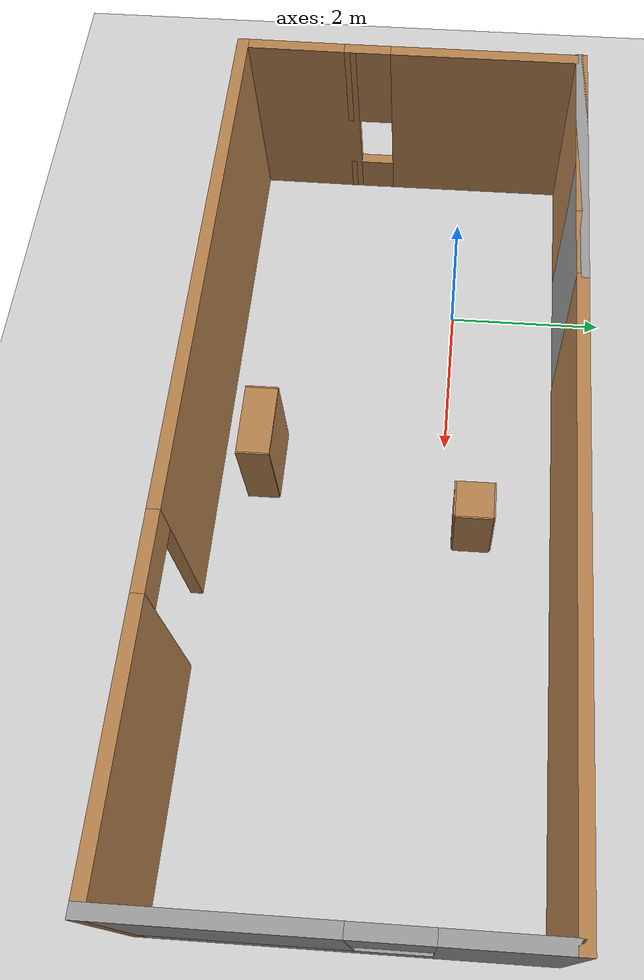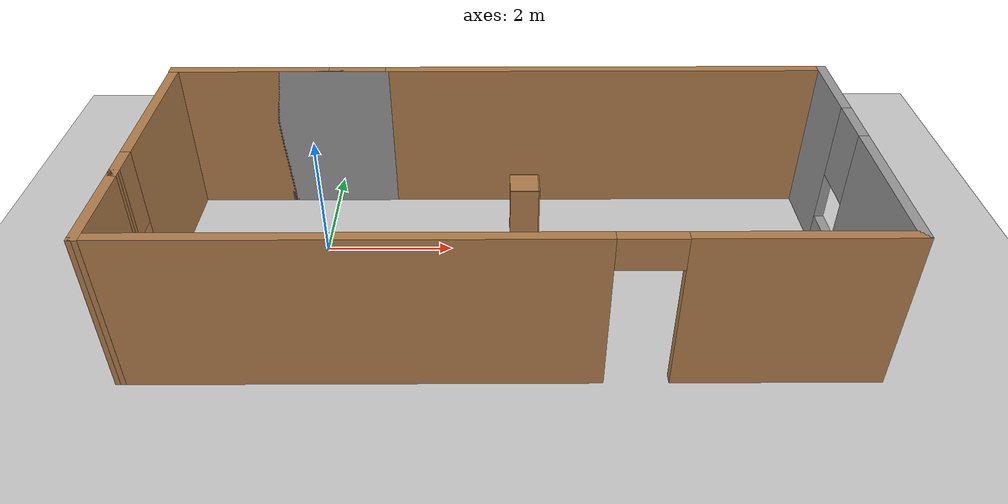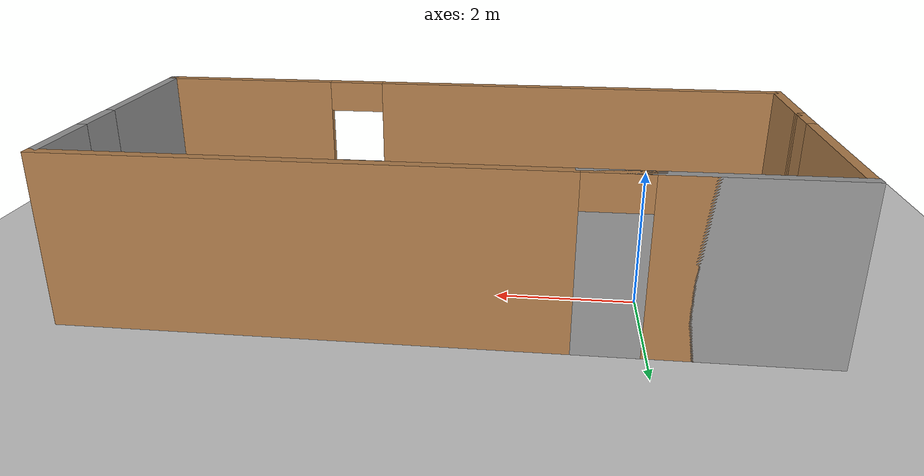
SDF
<sdf version="1.7">
 <world name="default">
  <light name="sun" type="directional">
   <pose>0 0 10 0 -0 0</pose>
   <diffuse>0.8 0.8 0.8 1</diffuse>
   <specular>0.2 0.2 0.2 1</specular>
   <attenuation>
    <range>1000</range>
    <constant>0.9</constant>
    <linear>0.01</linear>
    <quadratic>0.001</quadratic>
   </attenuation>
   <direction>-0.5 0.1 -0.9</direction>
   <spot><inner_angle>0</inner_angle><outer_angle>0</outer_angle><falloff>0</falloff></spot>
  </light>
  <model name="ground_plane">
   <static>1</static>
   <link name="link">
    <collision name="collision">
     <geometry><plane><normal>0 0 1</normal><size>100 100</size></plane></geometry>
     <surface><friction><ode><mu>100</mu><mu2>50</mu2></ode></friction></surface>
    </collision>
    <visual name="visual">
     <cast_shadows>0</cast_shadows>
     <geometry><plane><normal>0 0 1</normal><size>100 100</size></plane></geometry>
     <material>
      <script><uri>file://media/materials/scripts/gazebo.material</uri><name>Gazebo/Grey</name></script>
     </material>
    </visual>
   </link>
  </model>
  <gravity>0 0 -9.8</gravity>
  <magnetic_field>6e-06 2.3e-05 -4.2e-05</magnetic_field>
  <atmosphere type="adiabatic"/>
  <physics type="ode">
   <max_step_size>0.001</max_step_size>
   <real_time_factor>1</real_time_factor>
   <real_time_update_rate>1000</real_time_update_rate>
  </physics>
  <scene><ambient>0.4 0.4 0.4 1</ambient><background>0.7 0.7 0.7 1</background><shadows>1</shadows></scene>
  <audio><device>default</device></audio>
  <spherical_coordinates>
   <surface_model>EARTH_WGS84</surface_model>
   <latitude_deg>0</latitude_deg>
   <longitude_deg>0</longitude_deg>
   <elevation>0</elevation>
   <heading_deg>0</heading_deg>
  </spherical_coordinates>
  <model name="my">
   <pose>2.77631 -0.725136 0 0 -0 0</pose>
   <link name="Wall_0">
    <pose>-5.16473 0.640269 0 0 -0 -1.5708</pose>
    <visual name="Wall_0_Visual_0">
     <pose>-0.2975 0 1.25 0 -0 0</pose>
     <geometry><box><size>2.405 0.15 2.5</size></box></geometry>
     <material>
      <script><uri>file://media/materials/scripts/gazebo.material</uri><name>Gazebo/Wood</name></script>
      <ambient>1 1 1 1</ambient>
     </material>
     <meta><layer>0</layer></meta>
    </visual>
    <collision name="Wall_0_Collision_0">
     <geometry><box><size>2.405 0.15 2.5</size></box></geometry>
     <pose>-0.2975 0 1.25 0 -0 0</pose>
    </collision>
    <visual name="Wall_0_Visual_1">
     <pose>1.2025 0 0.25 0 -0 0</pose>
     <geometry><box><size>0.595 0.15 0.5</size></box></geometry>
     <material>
      <script><uri>file://media/materials/scripts/gazebo.material</uri><name>Gazebo/Wood</name></script>
      <ambient>1 1 1 1</ambient>
     </material>
     <meta><layer>0</layer></meta>
    </visual>
    <collision name="Wall_0_Collision_1">
     <geometry><box><size>0.595 0.15 0.5</size></box></geometry>
     <pose>1.2025 0 0.25 0 -0 0</pose>
    </collision>
    <visual name="Wall_0_Visual_2">
     <pose>1.2025 0 1.9 0 -0 0</pose>
     <geometry><box><size>0.595 0.15 1.2</size></box></geometry>
     <material>
      <script><uri>file://media/materials/scripts/gazebo.material</uri><name>Gazebo/Wood</name></script>
      <ambient>1 1 1 1</ambient>
     </material>
     <meta><layer>0</layer></meta>
    </visual>
    <collision name="Wall_0_Collision_2">
     <geometry><box><size>0.595 0.15 1.2</size></box></geometry>
     <pose>1.2025 0 1.9 0 -0 0</pose>
    </collision>
   </link>
   <link name="Wall_2">
    <collision name="Wall_2_Collision">
     <geometry><box><size>3.5 0.15 2.5</size></box></geometry>
     <pose>0 0 1.25 0 -0 0</pose>
    </collision>
    <visual name="Wall_2_Visual">
     <pose>0 0 1.25 0 -0 0</pose>
     <geometry><box><size>3.5 0.15 2.5</size></box></geometry>
     <material>
      <script><uri>file://media/materials/scripts/gazebo.material</uri><name>Gazebo/Grey</name></script>
      <ambient>1 1 1 1</ambient>
     </material>
     <meta><layer>0</layer></meta>
    </visual>
    <pose>-3.49973 2.17527 0 0 -0 3.14159</pose>
   </link>
   <link name="Wall_3">
    <pose>0.000269 2.17527 0 0 -0 0</pose>
    <visual name="Wall_3_Visual_0">
     <pose>-3.9775 0 1.25 0 -0 0</pose>
     <geometry><box><size>2.545 0.15 2.5</size></box></geometry>
     <material>
      <script><uri>file://media/materials/scripts/gazebo.material</uri><name>Gazebo/Wood</name></script>
      <ambient>1 1 1 1</ambient>
     </material>
     <meta><layer>0</layer></meta>
    </visual>
    <collision name="Wall_3_Collision_0">
     <geometry><box><size>2.545 0.15 2.5</size></box></geometry>
     <pose>-3.9775 0 1.25 0 -0 0</pose>
    </collision>
    <visual name="Wall_3_Visual_1">
     <pose>1.7225 0 1.25 0 -0 0</pose>
     <geometry><box><size>7.055 0.15 2.5</size></box></geometry>
     <material>
      <script><uri>file://media/materials/scripts/gazebo.material</uri><name>Gazebo/Wood</name></script>
      <ambient>1 1 1 1</ambient>
     </material>
     <meta><layer>0</layer></meta>
    </visual>
    <collision name="Wall_3_Collision_1">
     <geometry><box><size>7.055 0.15 2.5</size></box></geometry>
     <pose>1.7225 0 1.25 0 -0 0</pose>
    </collision>
    <visual name="Wall_3_Visual_2">
     <pose>-2.255 0 2.25 0 -0 0</pose>
     <geometry><box><size>0.9 0.15 0.5</size></box></geometry>
     <material>
      <script><uri>file://media/materials/scripts/gazebo.material</uri><name>Gazebo/Wood</name></script>
      <ambient>1 1 1 1</ambient>
     </material>
     <meta><layer>0</layer></meta>
    </visual>
    <collision name="Wall_3_Collision_2">
     <geometry><box><size>0.9 0.15 0.5</size></box></geometry>
     <pose>-2.255 0 2.25 0 -0 0</pose>
    </collision>
   </link>
   <link name="Wall_4">
    <pose>5.17527 0.000269 0 0 -0 -1.5708</pose>
    <visual name="Wall_4_Visual_0">
     <pose>-1.5825 0 1.25 0 -0 0</pose>
     <geometry><box><size>1.335 0.15 2.5</size></box></geometry>
     <material>
      <script><uri>file://media/materials/scripts/gazebo.material</uri><name>Gazebo/Grey</name></script>
      <ambient>1 1 1 1</ambient>
     </material>
     <meta><layer>0</layer></meta>
    </visual>
    <collision name="Wall_4_Collision_0">
     <geometry><box><size>1.335 0.15 2.5</size></box></geometry>
     <pose>-1.5825 0 1.25 0 -0 0</pose>
    </collision>
    <visual name="Wall_4_Visual_1">
     <pose>0.6675 0 0.25 0 -0 0</pose>
     <geometry><box><size>3.165 0.15 0.5</size></box></geometry>
     <material>
      <script><uri>file://media/materials/scripts/gazebo.material</uri><name>Gazebo/Grey</name></script>
      <ambient>1 1 1 1</ambient>
     </material>
     <meta><layer>0</layer></meta>
    </visual>
    <collision name="Wall_4_Collision_1">
     <geometry><box><size>3.165 0.15 0.5</size></box></geometry>
     <pose>0.6675 0 0.25 0 -0 0</pose>
    </collision>
    <visual name="Wall_4_Visual_2">
     <pose>1.0675 0 1.5 0 -0 0</pose>
     <geometry><box><size>2.365 0.15 2</size></box></geometry>
     <material>
      <script><uri>file://media/materials/scripts/gazebo.material</uri><name>Gazebo/Grey</name></script>
      <ambient>1 1 1 1</ambient>
     </material>
     <meta><layer>0</layer></meta>
    </visual>
    <collision name="Wall_4_Collision_2">
     <geometry><box><size>2.365 0.15 2</size></box></geometry>
     <pose>1.0675 0 1.5 0 -0 0</pose>
    </collision>
    <visual name="Wall_4_Visual_3">
     <pose>-0.515 0 1.9 0 -0 0</pose>
     <geometry><box><size>0.8 0.15 1.2</size></box></geometry>
     <material>
      <script><uri>file://media/materials/scripts/gazebo.material</uri><name>Gazebo/Grey</name></script>
      <ambient>1 1 1 1</ambient>
     </material>
     <meta><layer>0</layer></meta>
    </visual>
    <collision name="Wall_4_Collision_3">
     <geometry><box><size>0.8 0.15 1.2</size></box></geometry>
     <pose>-0.515 0 1.9 0 -0 0</pose>
    </collision>
   </link>
   <link name="Wall_5">
    <pose>0.000269 -2.17473 0 0 -0 3.14159</pose>
    <visual name="Wall_5_Visual_0">
     <pose>-3.7825 0 1.25 0 -0 0</pose>
     <geometry><box><size>2.935 0.15 2.5</size></box></geometry>
     <material>
      <script><uri>file://media/materials/scripts/gazebo.material</uri><name>Gazebo/Wood</name></script>
      <ambient>1 1 1 1</ambient>
     </material>
     <meta><layer>0</layer></meta>
    </visual>
    <collision name="Wall_5_Collision_0">
     <geometry><box><size>2.935 0.15 2.5</size></box></geometry>
     <pose>-3.7825 0 1.25 0 -0 0</pose>
    </collision>
    <visual name="Wall_5_Visual_1">
     <pose>1.9175 0 1.25 0 -0 0</pose>
     <geometry><box><size>6.665 0.15 2.5</size></box></geometry>
     <material>
      <script><uri>file://media/materials/scripts/gazebo.material</uri><name>Gazebo/Wood</name></script>
      <ambient>1 1 1 1</ambient>
     </material>
     <meta><layer>0</layer></meta>
    </visual>
    <collision name="Wall_5_Collision_1">
     <geometry><box><size>6.665 0.15 2.5</size></box></geometry>
     <pose>1.9175 0 1.25 0 -0 0</pose>
    </collision>
    <visual name="Wall_5_Visual_2">
     <pose>-1.865 0 2.25 0 -0 0</pose>
     <geometry><box><size>0.9 0.15 0.5</size></box></geometry>
     <material>
      <script><uri>file://media/materials/scripts/gazebo.material</uri><name>Gazebo/Wood</name></script>
      <ambient>1 1 1 1</ambient>
     </material>
     <meta><layer>0</layer></meta>
    </visual>
    <collision name="Wall_5_Collision_2">
     <geometry><box><size>0.9 0.15 0.5</size></box></geometry>
     <pose>-1.865 0 2.25 0 -0 0</pose>
    </collision>
   </link>
   <link name="Wall_6">
    <collision name="Wall_6_Collision">
     <geometry><box><size>1.54004 0.15 2.5</size></box></geometry>
     <pose>0 0 1.25 0 -0 0</pose>
    </collision>
    <visual name="Wall_6_Visual">
     <pose>0 0 1.25 0 -0 0</pose>
     <geometry><box><size>1.54004 0.15 2.5</size></box></geometry>
     <material>
      <script><uri>file://media/materials/scripts/gazebo.material</uri><name>Gazebo/Wood</name></script>
      <ambient>1 1 1 1</ambient>
     </material>
     <meta><layer>0</layer></meta>
    </visual>
    <pose>-5.16973 -1.47973 0 0 -0 1.5636</pose>
   </link>
   <static>1</static>
  </model>
  <model name="bookshelf">
   <static>1</static>
   <link name="link">
    <inertial><mass>1</mass></inertial>
    <collision name="back">
     <pose>0 0.005 0.6 0 -0 0</pose>
     <geometry><box><size>0.9 0.01 1.2</size></box></geometry>
    </collision>
    <visual name="visual1">
     <pose>0 0.005 0.6 0 -0 0</pose>
     <geometry><box><size>0.9 0.01 1.2</size></box></geometry>
     <material>
      <script><uri>file://media/materials/scripts/gazebo.material</uri><name>Gazebo/Wood</name></script>
     </material>
    </visual>
    <collision name="left_side">
     <pose>0.45 -0.195 0.6 0 -0 0</pose>
     <geometry><box><size>0.02 0.4 1.2</size></box></geometry>
    </collision>
    <visual name="visual2">
     <pose>0.45 -0.195 0.6 0 -0 0</pose>
     <geometry><box><size>0.02 0.4 1.2</size></box></geometry>
     <material>
      <script><uri>file://media/materials/scripts/gazebo.material</uri><name>Gazebo/Wood</name></script>
     </material>
    </visual>
    <collision name="right_side">
     <pose>-0.45 -0.195 0.6 0 -0 0</pose>
     <geometry><box><size>0.02 0.4 1.2</size></box></geometry>
    </collision>
    <visual name="visual3">
     <pose>-0.45 -0.195 0.6 0 -0 0</pose>
     <geometry><box><size>0.02 0.4 1.2</size></box></geometry>
     <material>
      <script><uri>file://media/materials/scripts/gazebo.material</uri><name>Gazebo/Wood</name></script>
     </material>
    </visual>
    <collision name="bottom">
     <pose>0 -0.195 0.03 0 -0 0</pose>
     <geometry><box><size>0.88 0.4 0.06</size></box></geometry>
    </collision>
    <visual name="visual4">
     <pose>0 -0.195 0.03 0 -0 0</pose>
     <geometry><box><size>0.88 0.4 0.06</size></box></geometry>
     <material>
      <script><uri>file://media/materials/scripts/gazebo.material</uri><name>Gazebo/Wood</name></script>
     </material>
    </visual>
    <collision name="top">
     <pose>0 -0.195 1.19 0 -0 0</pose>
     <geometry><box><size>0.88 0.4 0.02</size></box></geometry>
    </collision>
    <visual name="visual5">
     <pose>0 -0.195 1.19 0 -0 0</pose>
     <geometry><box><size>0.88 0.4 0.02</size></box></geometry>
     <material>
      <script><uri>file://media/materials/scripts/gazebo.material</uri><name>Gazebo/Wood</name></script>
     </material>
    </visual>
    <collision name="low_shelf">
     <pose>0 -0.195 0.43 0 -0 0</pose>
     <geometry><box><size>0.88 0.4 0.02</size></box></geometry>
    </collision>
    <visual name="visual6">
     <pose>0 -0.195 0.43 0 -0 0</pose>
     <geometry><box><size>0.88 0.4 0.02</size></box></geometry>
     <material>
      <script><uri>file://media/materials/scripts/gazebo.material</uri><name>Gazebo/Wood</name></script>
     </material>
    </visual>
    <collision name="high_shelf">
     <pose>0 -0.195 0.8 0 -0 0</pose>
     <geometry><box><size>0.88 0.4 0.02</size></box></geometry>
    </collision>
    <visual name="visual7">
     <pose>0 -0.195 0.8 0 -0 0</pose>
     <geometry><box><size>0.88 0.4 0.02</size></box></geometry>
     <material>
      <script><uri>file://media/materials/scripts/gazebo.material</uri><name>Gazebo/Wood</name></script>
     </material>
    </visual>
   </link>
   <pose>2.39576 -2.05466 0 0 -0 0</pose>
  </model>
  <model name="cabinet">
   <static>1</static>
   <link name="cabinet_bottom_plate">
    <inertial>
     <pose>0 0 -1 0 -0 0</pose>
     <inertia><ixx>2.05</ixx><ixy>0</ixy><ixz>0</ixz><iyy>2.05</iyy><iyz>0</iyz><izz>2.05</izz></inertia>
     <mass>25</mass>
    </inertial>
    <collision name="cabinet_bottom_plate_geom">
     <pose>0 0 0.01 0 -0 0</pose>
     <geometry><box><size>0.45 0.45 0.02</size></box></geometry>
    </collision>
    <visual name="cabinet_bottom_plate_geom_visual">
     <pose>0 0 0.01 0 -0 0</pose>
     <geometry><box><size>0.45 0.45 0.02</size></box></geometry>
     <material>
      <script><uri>file://media/materials/scripts/gazebo.material</uri><name>Gazebo/Wood</name></script>
     </material>
    </visual>
    <collision name="cabinet_bottom_plate_geom_cabinet_back_plate">
     <pose>0.235 0 0.51 0 -0 0</pose>
     <geometry><box><size>0.02 0.45 1.02</size></box></geometry>
    </collision>
    <visual name="cabinet_bottom_plate_geom_cabinet_back_plate_visual">
     <pose>0.235 0 0.51 0 -0 0</pose>
     <geometry><box><size>0.02 0.45 1.02</size></box></geometry>
     <material>
      <script><uri>file://media/materials/scripts/gazebo.material</uri><name>Gazebo/Wood</name></script>
     </material>
    </visual>
    <collision name="cabinet_bottom_plate_geom_cabinet_left_plate">
     <pose>0 0.235 0.51 0 -0 0</pose>
     <geometry><box><size>0.45 0.02 1.02</size></box></geometry>
    </collision>
    <visual name="cabinet_bottom_plate_geom_cabinet_left_plate_visual">
     <pose>0 0.235 0.51 0 -0 0</pose>
     <geometry><box><size>0.45 0.02 1.02</size></box></geometry>
     <material>
      <script><uri>file://media/materials/scripts/gazebo.material</uri><name>Gazebo/Wood</name></script>
     </material>
    </visual>
    <collision name="cabinet_bottom_plate_geom_cabinet_middle_plate">
     <pose>0 0 0.51 0 -0 0</pose>
     <geometry><box><size>0.45 0.45 0.02</size></box></geometry>
    </collision>
    <visual name="cabinet_bottom_plate_geom_cabinet_middle_plate_visual">
     <pose>0 0 0.51 0 -0 0</pose>
     <geometry><box><size>0.45 0.45 0.02</size></box></geometry>
     <material>
      <script><uri>file://media/materials/scripts/gazebo.material</uri><name>Gazebo/Wood</name></script>
     </material>
    </visual>
    <collision name="cabinet_bottom_plate_geom_cabinet_right_plate">
     <pose>0 -0.235 0.51 0 -0 0</pose>
     <geometry><box><size>0.45 0.02 1.02</size></box></geometry>
    </collision>
    <visual name="cabinet_bottom_plate_geom_cabinet_right_plate_visual">
     <pose>0 -0.235 0.51 0 -0 0</pose>
     <geometry><box><size>0.45 0.02 1.02</size></box></geometry>
     <material>
      <script><uri>file://media/materials/scripts/gazebo.material</uri><name>Gazebo/Wood</name></script>
     </material>
    </visual>
    <collision name="cabinet_bottom_plate_geom_cabinet_top_plate">
     <pose>0 0 1.01 0 -0 0</pose>
     <geometry><box><size>0.45 0.45 0.02</size></box></geometry>
    </collision>
    <visual name="cabinet_bottom_plate_geom_cabinet_top_plate_visual">
     <pose>0 0 1.01 0 -0 0</pose>
     <geometry><box><size>0.45 0.45 0.02</size></box></geometry>
     <material>
      <script><uri>file://media/materials/scripts/gazebo.material</uri><name>Gazebo/Wood</name></script>
     </material>
    </visual>
   </link>
   <pose>3.18396 0.391285 0 0 -0 0</pose>
  </model>
 </world>
</sdf>
